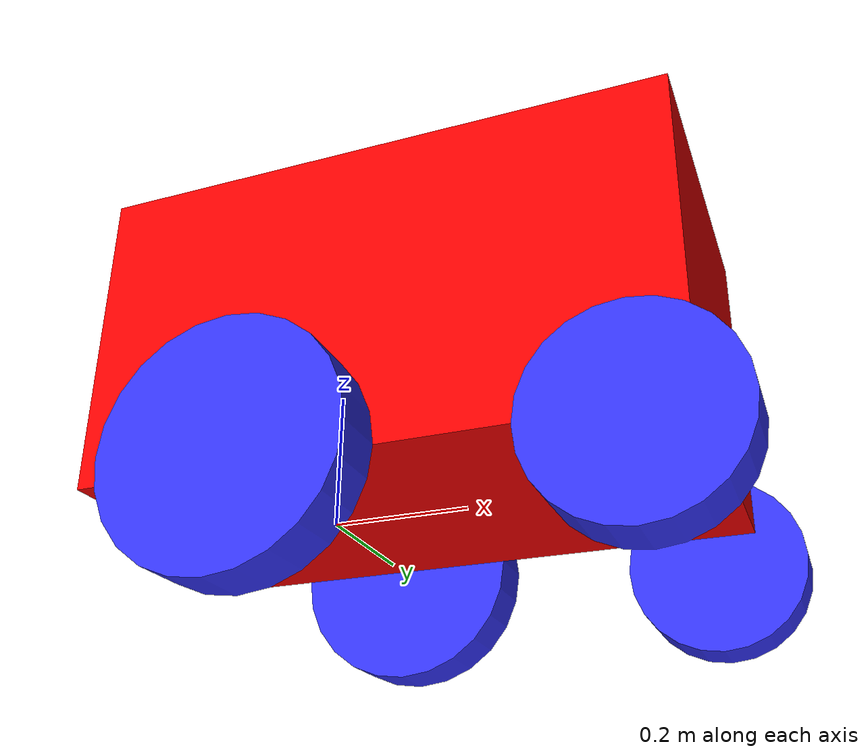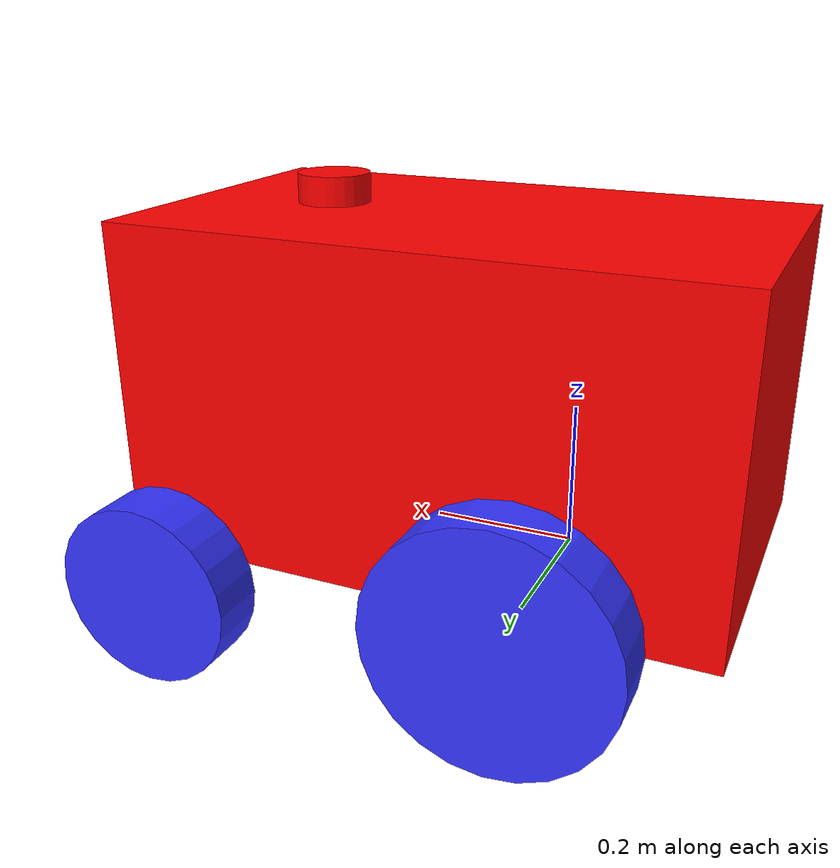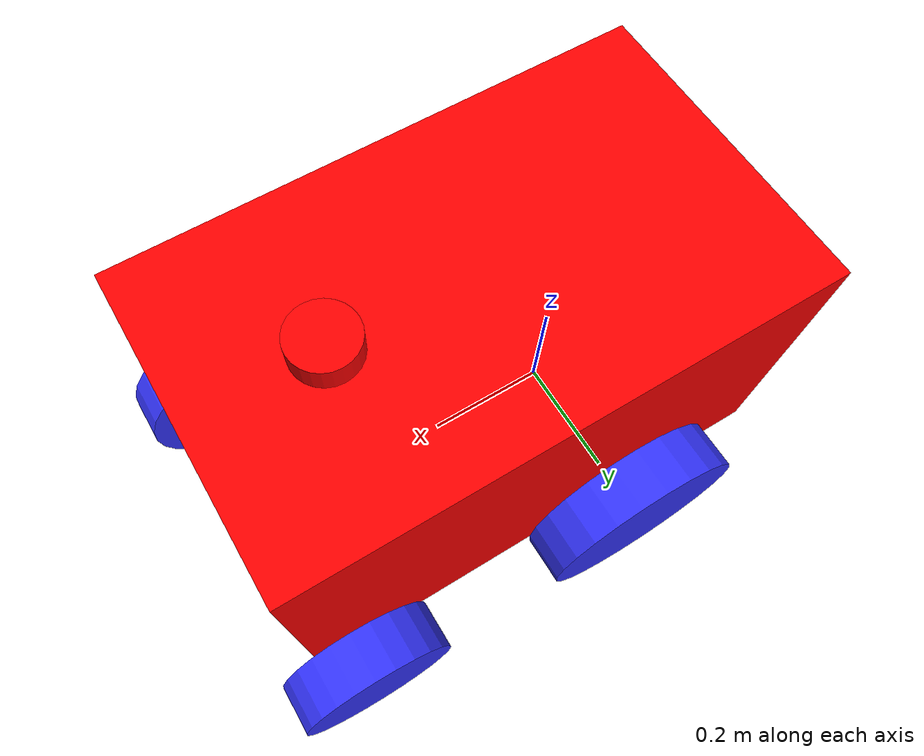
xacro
<?xml version="1.0"?>
<robot xmlns:xacro="http://www.ros.org/wiki/xacro"  name="robot">

    <xacro:arg name="use_ros2_control" default="true"/>

    <xacro:include filename="robot_core.xacro" />

    <xacro:if value="$(arg use_ros2_control)">
        <xacro:include filename="ros2_control.xacro" />
    </xacro:if>

    <xacro:unless value="$(arg use_ros2_control)">
        <xacro:include filename="gazebo_control.xacro" />
    </xacro:unless>

    <xacro:include filename="lidar.xacro" />

</robot>

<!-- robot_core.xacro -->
<robot xmlns:xacro="http://www.ros.org/wiki/xacro" >

<xacro:include filename="inertial_macros.xacro" />
    <material name="white">
        <color rgba="1 1 1 1"/>
    </material>

    <material name="orange">
        <color rgba="1 0.3 0.1 1"/>
    </material>

    <material name="blue">
        <color rgba="0.2 0.2 1 1"/>
    </material>

    <material name="black">
        <color rgba="0 0 0 1"/>
    </material>

    <material name="red">
        <color rgba="1 0 0 1"/>
    </material>

    <!--  BASE LINK  -->

    <link name="base_link">

    </link>

    <!--  CHASSIS LINK  -->

    <joint name="chassis_joint" type="fixed">
        <parent link="base_link"/>
        <child link="chassis"/>
        <origin xyz="-0.26 0 0"/>
    </joint>

    <link name="chassis">
        <visual>
            <origin xyz="0.41 0 0.225" rpy="0 0 0"/>
            <geometry>
                <box size="0.82 0.49 0.45"/>
            </geometry>
            <material name="red"/>
        </visual>

        <collision>
            <origin xyz="0.41 0 0.225" rpy="0 0 0"/>
            <geometry>
                <box size="0.82 0.49 0.45"/>
            </geometry>
        </collision>

        <xacro:inertial_box mass="35" x="0.82" y="0.49" z="0.45">
            <origin xyz="0.41 0 0.225" rpy="0 0 0"/>
        </xacro:inertial_box>

    </link>

    <gazebo reference="chassis">
        <material>Gazebo/Red</material>
    </gazebo>

    <!--  LEFT WHEEL LINK  -->

    <joint name="left_wheel_joint" type="continuous">
        <parent link="base_link"/>
        <child link="left_wheel"/>
        <origin xyz="0 0.285 0" rpy="-${pi/2} 0 0"/>
        <axis xyz="0 0 2"/>
    </joint>

    <link name="left_wheel">
        <visual>
            <geometry>
                <cylinder length="0.08" radius="0.17" />/>
            </geometry>
            <material name="blue"/>
        </visual>

        <collision>
            <geometry>
                <sphere radius="0.17" />/>
            </geometry>
        </collision>

        <xacro:inertial_cylinder mass="1" length="0.08" radius="0.17">
            <origin xyz="0 0 0" rpy="0 0 0"/>
        </xacro:inertial_cylinder>

    </link>

    <gazebo reference="left_wheel">
        <material>Gazebo/Grey</material>
    </gazebo>

    <!-- RIGHT WHEEL -->

    <joint name="right_wheel_joint" type="continuous">
        <parent link="base_link"/>
        <child link="right_wheel"/>
        <origin xyz="0 -0.285 0" rpy="${pi/2} 0 0"/>
        <axis xyz="0 0 -2"/>
    </joint>

    <link name="right_wheel">
        <visual>
            <geometry>
                <cylinder length="0.08" radius="0.17" />/>
            </geometry>
            <material name="blue"/>
        </visual>

        <collision>
            <geometry>
                <sphere radius="0.17" />/>
            </geometry>
        </collision>

        <xacro:inertial_cylinder mass="1" length="0.08" radius="0.17">
            <origin xyz="0 0 0" rpy="0 0 0"/>
        </xacro:inertial_cylinder>

    </link>

    <gazebo reference="right_wheel">
        <material>Gazebo/Grey</material>
    </gazebo>

    <!--  LEFT FRONT WHEEL LINK  -->

    <joint name="left_front_wheel_joint" type="fixed">
        <parent link="base_link"/>
        <child link="left_front_wheel"/>
        <origin xyz="0.5 0.285 -0.04" rpy="-${pi/2} 0 0"/>
        <axis xyz="0 0 2"/>
    </joint>

    <link name="left_front_wheel">
        <visual>
            <geometry>
                <cylinder length="0.08" radius="0.13" />/>
            </geometry>
            <material name="blue"/>
        </visual>

        <collision>
            <geometry>
                <sphere radius="0.13" />
            </geometry>
        </collision>

        <xacro:inertial_cylinder mass="1" length="0.08" radius="0.13">
            <origin xyz="0 0 0" rpy="0 0 0"/>
        </xacro:inertial_cylinder>

    </link>

    <gazebo reference="left_front_wheel">
        <material>Gazebo/Grey</material>
        <mu1 value="0.001"/>
        <mu2 value="0.001"/>
    </gazebo>

    <!--  RIGHT FRONT WHEEL LINK  -->

    <joint name="right_front_wheel_joint" type="fixed">
        <parent link="base_link"/>
        <child link="right_front_wheel"/>
        <origin xyz="0.5 -0.285 -0.04" rpy="${pi/2} 0 0"/>
        <axis xyz="0 0 -2"/>
    </joint>

    <link name="right_front_wheel">
        <visual>
            <geometry>
                <cylinder length="0.08" radius="0.13" />/>
            </geometry>
            <material name="blue"/>
        </visual>

        <collision>
            <geometry>
                <sphere radius="0.13" />
            </geometry>
        </collision>

        <xacro:inertial_cylinder mass="1" length="0.08" radius="0.13">
            <origin xyz="0 0 0" rpy="0 0 0"/>
        </xacro:inertial_cylinder>

    </link>

    <gazebo reference="right_front_wheel">
        <material>Gazebo/Grey</material>
        <mu1 value="0.001"/>
        <mu2 value="0.001"/>
    </gazebo>

</robot>

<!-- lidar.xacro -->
<robot xmlns:xacro="http://www.ros.org/wiki/xacro" >

    <joint name="laser_joint" type="fixed">
        <parent link="chassis"/>
        <child link="laser_frame"/>
        <origin xyz="0.62 0 0.47" rpy="0 0 0"/>
    </joint>

     <link name="laser_frame">
        <visual>
            <geometry>
                <cylinder radius="0.05" length="0.04"/>
            </geometry>
            <material name="red"/>
        </visual>
        <collision>
            <geometry>
                <cylinder radius="0.05" length="0.04"/>
            </geometry>
        </collision>
        <xacro:inertial_cylinder mass="0.1" length="0.04" radius="0.05">
            <origin xyz="0 0 0" rpy="0 0 0"/>
        </xacro:inertial_cylinder>
    </link>

    <gazebo reference="laser_frame">
        <material>Gazebo/Red</material>

        <sensor name="laser" type="ray">
            <pose> 0 0 0 0 0 0 </pose>
            <visualize>true</visualize>
            <update_rate>10</update_rate>
            <ray>
                <scan>
                    <horizontal>
                        <samples>360</samples>
                        <min_angle>-3.14</min_angle>
                        <max_angle>3.14</max_angle>
                    </horizontal>
                </scan>
                <range>
                    <min>0.3</min>
                    <max>12</max>
                </range>
            </ray>
            <plugin name="laser_controller" filename="libgazebo_ros_ray_sensor.so">
                <ros>
                    <argument>~/out:=scan</argument>
                </ros>
                <output_type>sensor_msgs/LaserScan</output_type>
                <frame_name>laser_frame</frame_name>
            </plugin>
        </sensor>
    </gazebo>

</robot>
